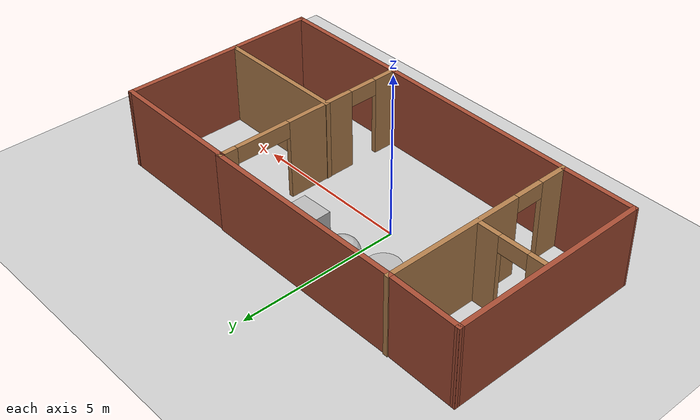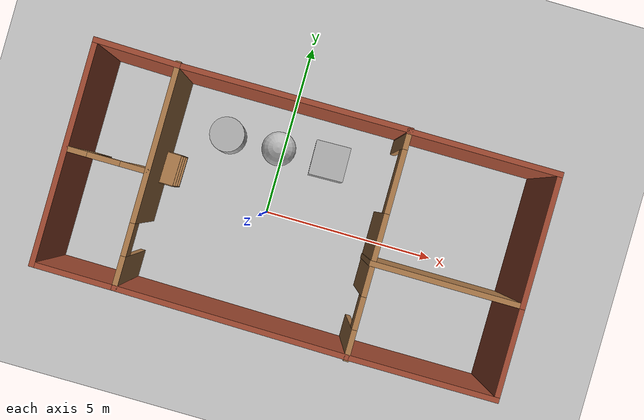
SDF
<sdf version="1.6">
 <world name="default">
  <light name="sun" type="directional">
   <pose>0 0 10 0 -0 0</pose>
   <diffuse>0.8 0.8 0.8 1</diffuse>
   <specular>0.2 0.2 0.2 1</specular>
   <attenuation>
    <range>1000</range>
    <constant>0.9</constant>
    <linear>0.01</linear>
    <quadratic>0.001</quadratic>
   </attenuation>
   <direction>-0.5 0.1 -0.9</direction>
  </light>
  <model name="ground_plane">
   <static>1</static>
   <link name="link">
    <collision name="collision">
     <geometry><plane><normal>0 0 1</normal><size>100 100</size></plane></geometry>
     <surface><friction><ode><mu>100</mu><mu2>50</mu2></ode></friction></surface>
    </collision>
    <visual name="visual">
     <cast_shadows>0</cast_shadows>
     <geometry><plane><normal>0 0 1</normal><size>100 100</size></plane></geometry>
     <material>
      <script><uri>file://media/materials/scripts/gazebo.material</uri><name>Gazebo/Grey</name></script>
     </material>
    </visual>
   </link>
  </model>
  <gravity>0 0 -9.8</gravity>
  <magnetic_field>6e-06 2.3e-05 -4.2e-05</magnetic_field>
  <atmosphere type="adiabatic"/>
  <physics name="default_physics" default="0" type="ode">
   <max_step_size>0.001</max_step_size>
   <real_time_factor>1</real_time_factor>
   <real_time_update_rate>1000</real_time_update_rate>
  </physics>
  <scene><ambient>0.4 0.4 0.4 1</ambient><background>0.7 0.7 0.7 1</background><shadows>1</shadows></scene>
  <audio><device>default</device></audio>
  <spherical_coordinates>
   <surface_model>EARTH_WGS84</surface_model>
   <latitude_deg>0</latitude_deg>
   <longitude_deg>0</longitude_deg>
   <elevation>0</elevation>
   <heading_deg>0</heading_deg>
  </spherical_coordinates>
  <model name="flat">
   <pose>0.879143 0.065747 0 0 -0 0</pose>
   <link name="Wall_10">
    <collision name="Wall_10_Collision">
     <geometry><box><size>6.47567 0.15 2.5</size></box></geometry>
     <pose>0 0 1.25 0 -0 0</pose>
    </collision>
    <visual name="Wall_10_Visual">
     <pose>0 0 1.25 0 -0 0</pose>
     <geometry><box><size>6.47567 0.15 2.5</size></box></geometry>
     <material>
      <script><uri>file://media/materials/scripts/gazebo.material</uri><name>Gazebo/Bricks</name></script>
      <ambient>1 1 1 1</ambient>
     </material>
     <meta><layer>0</layer></meta>
    </visual>
    <pose>-0.927592 -3.04296 0 0 -0 3.13003</pose>
   </link>
   <link name="Wall_12">
    <collision name="Wall_12_Collision">
     <geometry><box><size>4.25 0.15 2.5</size></box></geometry>
     <pose>0 0 1.25 0 -0 0</pose>
    </collision>
    <visual name="Wall_12_Visual">
     <pose>0 0 1.25 0 -0 0</pose>
     <geometry><box><size>4.25 0.15 2.5</size></box></geometry>
     <material>
      <script><uri>file://media/materials/scripts/gazebo.material</uri><name>Gazebo/Bricks</name></script>
      <ambient>1 1 1 1</ambient>
     </material>
     <meta><layer>0</layer></meta>
    </visual>
    <pose>4.28503 3.0632 0 0 -0 0</pose>
   </link>
   <link name="Wall_13">
    <collision name="Wall_13_Collision">
     <geometry><box><size>3.75 0.15 2.5</size></box></geometry>
     <pose>0 0 1.25 0 -0 0</pose>
    </collision>
    <visual name="Wall_13_Visual">
     <pose>0 0 1.25 0 -0 0</pose>
     <geometry><box><size>3.75 0.15 2.5</size></box></geometry>
     <material>
      <script><uri>file://media/materials/scripts/gazebo.material</uri><name>Gazebo/Bricks</name></script>
      <ambient>1 1 1 1</ambient>
     </material>
     <meta><layer>0</layer></meta>
    </visual>
    <pose>6.33503 1.2632 0 0 -0 -1.5708</pose>
   </link>
   <link name="Wall_14">
    <collision name="Wall_14_Collision">
     <geometry><box><size>4.25 0.15 2.5</size></box></geometry>
     <pose>0 0 1.25 0 -0 0</pose>
    </collision>
    <visual name="Wall_14_Visual">
     <pose>0 0 1.25 0 -0 0</pose>
     <geometry><box><size>4.25 0.15 2.5</size></box></geometry>
     <material>
      <script><uri>file://media/materials/scripts/gazebo.material</uri><name>Gazebo/Wood</name></script>
      <ambient>1 1 1 1</ambient>
     </material>
     <meta><layer>0</layer></meta>
    </visual>
    <pose>4.28503 -0.536801 0 0 -0 3.14159</pose>
   </link>
   <link name="Wall_16">
    <collision name="Wall_16_Collision">
     <geometry><box><size>4.25 0.15 2.5</size></box></geometry>
     <pose>0 0 1.25 0 -0 0</pose>
    </collision>
    <visual name="Wall_16_Visual">
     <pose>0 0 1.25 0 -0 0</pose>
     <geometry><box><size>4.25 0.15 2.5</size></box></geometry>
     <material>
      <script><uri>file://media/materials/scripts/gazebo.material</uri><name>Gazebo/Bricks</name></script>
      <ambient>1 1 1 1</ambient>
     </material>
     <meta><layer>0</layer></meta>
    </visual>
    <pose>4.28503 -3.07954 0 0 -0 0</pose>
   </link>
   <link name="Wall_17">
    <collision name="Wall_17_Collision">
     <geometry><box><size>2.69274 0.15 2.5</size></box></geometry>
     <pose>0 0 1.25 0 -0 0</pose>
    </collision>
    <visual name="Wall_17_Visual">
     <pose>0 0 1.25 0 -0 0</pose>
     <geometry><box><size>2.69274 0.15 2.5</size></box></geometry>
     <material>
      <script><uri>file://media/materials/scripts/gazebo.material</uri><name>Gazebo/Bricks</name></script>
      <ambient>1 1 1 1</ambient>
     </material>
     <meta><layer>0</layer></meta>
    </visual>
    <pose>6.33503 -1.80817 0 0 -0 1.5708</pose>
   </link>
   <link name="Wall_19">
    <collision name="Wall_19_Collision">
     <geometry><box><size>2.39354 0.15 2.5</size></box></geometry>
     <pose>0 0 1.25 0 -0 0</pose>
    </collision>
    <visual name="Wall_19_Visual">
     <pose>0 0 1.25 0 -0 0</pose>
     <geometry><box><size>2.39354 0.15 2.5</size></box></geometry>
     <material>
      <script><uri>file://media/materials/scripts/gazebo.material</uri><name>Gazebo/Bricks</name></script>
      <ambient>1 1 1 1</ambient>
     </material>
     <meta><layer>0</layer></meta>
    </visual>
    <pose>-5.21199 3.08601 0 0 -0 3.12126</pose>
   </link>
   <link name="Wall_20">
    <collision name="Wall_20_Collision">
     <geometry><box><size>6.25 0.15 2.5</size></box></geometry>
     <pose>0 0 1.25 0 -0 0</pose>
    </collision>
    <visual name="Wall_20_Visual">
     <pose>0 0 1.25 0 -0 0</pose>
     <geometry><box><size>6.25 0.15 2.5</size></box></geometry>
     <material>
      <script><uri>file://media/materials/scripts/gazebo.material</uri><name>Gazebo/Bricks</name></script>
      <ambient>1 1 1 1</ambient>
     </material>
     <meta><layer>0</layer></meta>
    </visual>
    <pose>-6.33376 0.058826 0 0 -0 -1.5708</pose>
   </link>
   <link name="Wall_21">
    <collision name="Wall_21_Collision">
     <geometry><box><size>2.39359 0.15 2.5</size></box></geometry>
     <pose>0 0 1.25 0 -0 0</pose>
    </collision>
    <visual name="Wall_21_Visual">
     <pose>0 0 1.25 0 -0 0</pose>
     <geometry><box><size>2.39359 0.15 2.5</size></box></geometry>
     <material>
      <script><uri>file://media/materials/scripts/gazebo.material</uri><name>Gazebo/Bricks</name></script>
      <ambient>1 1 1 1</ambient>
     </material>
     <meta><layer>0</layer></meta>
    </visual>
    <pose>-5.21199 -2.99878 0 0 -0 -0.006779</pose>
   </link>
   <link name="Wall_23">
    <pose>-5.16676 0.166321 0 0 -0 3.14159</pose>
    <visual name="Wall_23_Visual_0">
     <pose>-0.726963 0 1.25 0 -0 0</pose>
     <geometry><box><size>0.796074 0.15 2.5</size></box></geometry>
     <material>
      <script><uri>file://media/materials/scripts/gazebo.material</uri><name>Gazebo/Wood</name></script>
      <ambient>1 1 1 1</ambient>
     </material>
     <meta><layer>0</layer></meta>
    </visual>
    <collision name="Wall_23_Collision_0">
     <geometry><box><size>0.796074 0.15 2.5</size></box></geometry>
     <pose>-0.726963 0 1.25 0 -0 0</pose>
    </collision>
    <visual name="Wall_23_Visual_1">
     <pose>0.848037 0 1.25 0 -0 0</pose>
     <geometry><box><size>0.553926 0.15 2.5</size></box></geometry>
     <material>
      <script><uri>file://media/materials/scripts/gazebo.material</uri><name>Gazebo/Wood</name></script>
      <ambient>1 1 1 1</ambient>
     </material>
     <meta><layer>0</layer></meta>
    </visual>
    <collision name="Wall_23_Collision_1">
     <geometry><box><size>0.553926 0.15 2.5</size></box></geometry>
     <pose>0.848037 0 1.25 0 -0 0</pose>
    </collision>
    <visual name="Wall_23_Visual_2">
     <pose>0.121074 0 2.25 0 -0 0</pose>
     <geometry><box><size>0.9 0.15 0.5</size></box></geometry>
     <material>
      <script><uri>file://media/materials/scripts/gazebo.material</uri><name>Gazebo/Wood</name></script>
      <ambient>1 1 1 1</ambient>
     </material>
     <meta><layer>0</layer></meta>
    </visual>
    <collision name="Wall_23_Collision_2">
     <geometry><box><size>0.9 0.15 0.5</size></box></geometry>
     <pose>0.121074 0 2.25 0 -0 0</pose>
    </collision>
   </link>
   <link name="Wall_6">
    <pose>-4.09022 0.043617 0 0 -0 1.5708</pose>
    <visual name="Wall_6_Visual_0">
     <pose>-2.65388 0 1.25 0 -0 0</pose>
     <geometry><box><size>0.942236 0.15 2.5</size></box></geometry>
     <material>
      <script><uri>file://media/materials/scripts/gazebo.material</uri><name>Gazebo/Wood</name></script>
      <ambient>1 1 1 1</ambient>
     </material>
     <meta><layer>0</layer></meta>
    </visual>
    <collision name="Wall_6_Collision_0">
     <geometry><box><size>0.942236 0.15 2.5</size></box></geometry>
     <pose>-2.65388 0 1.25 0 -0 0</pose>
    </collision>
    <visual name="Wall_6_Visual_1">
     <pose>0.921118 0 1.25 0 -0 0</pose>
     <geometry><box><size>4.40776 0.15 2.5</size></box></geometry>
     <material>
      <script><uri>file://media/materials/scripts/gazebo.material</uri><name>Gazebo/Wood</name></script>
      <ambient>1 1 1 1</ambient>
     </material>
     <meta><layer>0</layer></meta>
    </visual>
    <collision name="Wall_6_Collision_1">
     <geometry><box><size>4.40776 0.15 2.5</size></box></geometry>
     <pose>0.921118 0 1.25 0 -0 0</pose>
    </collision>
    <visual name="Wall_6_Visual_2">
     <pose>-1.73276 0 2.25 0 -0 0</pose>
     <geometry><box><size>0.9 0.15 0.5</size></box></geometry>
     <material>
      <script><uri>file://media/materials/scripts/gazebo.material</uri><name>Gazebo/Wood</name></script>
      <ambient>1 1 1 1</ambient>
     </material>
     <meta><layer>0</layer></meta>
    </visual>
    <collision name="Wall_6_Collision_2">
     <geometry><box><size>0.9 0.15 0.5</size></box></geometry>
     <pose>-1.73276 0 2.25 0 -0 0</pose>
    </collision>
   </link>
   <link name="Wall_8">
    <collision name="Wall_8_Collision">
     <geometry><box><size>6.49048 0.15 2.5</size></box></geometry>
     <pose>0 0 1.25 0 -0 0</pose>
    </collision>
    <visual name="Wall_8_Visual">
     <pose>0 0 1.25 0 -0 0</pose>
     <geometry><box><size>6.49048 0.15 2.5</size></box></geometry>
     <material>
      <script><uri>file://media/materials/scripts/gazebo.material</uri><name>Gazebo/Bricks</name></script>
      <ambient>1 1 1 1</ambient>
     </material>
     <meta><layer>0</layer></meta>
    </visual>
    <pose>-0.919988 3.07841 0 0 -0 0.004797</pose>
   </link>
   <link name="Wall_9">
    <pose>2.25024 -0.023381 0 0 -0 -1.56587</pose>
    <visual name="Wall_9_Visual_0">
     <pose>-2.87798 0 1.25 0 -0 0</pose>
     <geometry><box><size>0.56727 0.15 2.5</size></box></geometry>
     <material>
      <script><uri>file://media/materials/scripts/gazebo.material</uri><name>Gazebo/Wood</name></script>
      <ambient>1 1 1 1</ambient>
     </material>
     <meta><layer>0</layer></meta>
    </visual>
    <collision name="Wall_9_Collision_0">
     <geometry><box><size>0.56727 0.15 2.5</size></box></geometry>
     <pose>-2.87798 0 1.25 0 -0 0</pose>
    </collision>
    <visual name="Wall_9_Visual_1">
     <pose>0.285145 0 1.25 0 -0 0</pose>
     <geometry><box><size>2.25608 0.15 2.5</size></box></geometry>
     <material>
      <script><uri>file://media/materials/scripts/gazebo.material</uri><name>Gazebo/Wood</name></script>
      <ambient>1 1 1 1</ambient>
     </material>
     <meta><layer>0</layer></meta>
    </visual>
    <collision name="Wall_9_Collision_1">
     <geometry><box><size>2.25608 0.15 2.5</size></box></geometry>
     <pose>0.285145 0 1.25 0 -0 0</pose>
    </collision>
    <visual name="Wall_9_Visual_2">
     <pose>2.7374 0 1.25 0 -0 0</pose>
     <geometry><box><size>0.848434 0.15 2.5</size></box></geometry>
     <material>
      <script><uri>file://media/materials/scripts/gazebo.material</uri><name>Gazebo/Wood</name></script>
      <ambient>1 1 1 1</ambient>
     </material>
     <meta><layer>0</layer></meta>
    </visual>
    <collision name="Wall_9_Collision_2">
     <geometry><box><size>0.848434 0.15 2.5</size></box></geometry>
     <pose>2.7374 0 1.25 0 -0 0</pose>
    </collision>
    <visual name="Wall_9_Visual_3">
     <pose>-1.71862 0 2.25 0 -0 0</pose>
     <geometry><box><size>1.75145 0.15 0.5</size></box></geometry>
     <material>
      <script><uri>file://media/materials/scripts/gazebo.material</uri><name>Gazebo/Wood</name></script>
      <ambient>1 1 1 1</ambient>
     </material>
     <meta><layer>0</layer></meta>
    </visual>
    <collision name="Wall_9_Collision_3">
     <geometry><box><size>1.75145 0.15 0.5</size></box></geometry>
     <pose>-1.71862 0 2.25 0 -0 0</pose>
    </collision>
    <visual name="Wall_9_Visual_4">
     <pose>1.86318 0 2.25 0 -0 0</pose>
     <geometry><box><size>0.9 0.15 0.5</size></box></geometry>
     <material>
      <script><uri>file://media/materials/scripts/gazebo.material</uri><name>Gazebo/Wood</name></script>
      <ambient>1 1 1 1</ambient>
     </material>
     <meta><layer>0</layer></meta>
    </visual>
    <collision name="Wall_9_Collision_4">
     <geometry><box><size>0.9 0.15 0.5</size></box></geometry>
     <pose>1.86318 0 2.25 0 -0 0</pose>
    </collision>
   </link>
   <static>1</static>
  </model>
  <model name="textured_shapes">
   <pose>-0.146443 1.86647 0.5 0 -0 1.5946</pose>
   <link name="box">
    <pose>0 -1.5 0 0 -0 0</pose>
    <collision name="collision"><geometry><box><size>1 1 1</size></box></geometry></collision>
    <visual name="visual">
     <geometry><box><size>1 1 1</size></box></geometry>
     <material>
      <script>
       <uri>model://textured_shapes/materials/scripts</uri>
       <uri>model://textured_shapes/materials/textures</uri>
       <name>TexturedShape/Squares</name>
      </script>
     </material>
    </visual>
    <inertial>
     <inertia><ixx>1</ixx><ixy>0</ixy><ixz>0</ixz><iyy>1</iyy><iyz>0</iyz><izz>1</izz></inertia>
     <mass>1</mass>
    </inertial>
   </link>
   <link name="sphere">
    <collision name="collision"><geometry><sphere><radius>0.5</radius></sphere></geometry></collision>
    <visual name="visual">
     <geometry><sphere><radius>0.5</radius></sphere></geometry>
     <material>
      <script>
       <uri>model://textured_shapes/materials/scripts</uri>
       <uri>model://textured_shapes/materials/textures</uri>
       <name>TexturedShape/Squares</name>
      </script>
     </material>
    </visual>
    <inertial>
     <inertia><ixx>1</ixx><ixy>0</ixy><ixz>0</ixz><iyy>1</iyy><iyz>0</iyz><izz>1</izz></inertia>
     <mass>1</mass>
    </inertial>
   </link>
   <link name="cylinder">
    <pose>0 1.5 0 0 -0 0</pose>
    <collision name="collision">
     <geometry><cylinder><radius>0.5</radius><length>1</length></cylinder></geometry>
    </collision>
    <visual name="visual">
     <geometry><cylinder><radius>0.5</radius><length>1</length></cylinder></geometry>
     <material>
      <script>
       <uri>model://textured_shapes/materials/scripts</uri>
       <uri>model://textured_shapes/materials/textures</uri>
       <name>TexturedShape/Squares</name>
      </script>
     </material>
    </visual>
    <inertial>
     <inertia><ixx>1</ixx><ixy>0</ixy><ixz>0</ixz><iyy>1</iyy><iyz>0</iyz><izz>1</izz></inertia>
     <mass>1</mass>
    </inertial>
   </link>
  </model>
  <model name="bookshelf">
   <static>1</static>
   <link name="link">
    <inertial><mass>1</mass></inertial>
    <collision name="back">
     <pose>0 0.005 0.6 0 -0 0</pose>
     <geometry><box><size>0.9 0.01 1.2</size></box></geometry>
    </collision>
    <visual name="visual1">
     <pose>0 0.005 0.6 0 -0 0</pose>
     <geometry><box><size>0.9 0.01 1.2</size></box></geometry>
     <material>
      <script><uri>file://media/materials/scripts/gazebo.material</uri><name>Gazebo/Wood</name></script>
     </material>
    </visual>
    <collision name="left_side">
     <pose>0.45 -0.195 0.6 0 -0 0</pose>
     <geometry><box><size>0.02 0.4 1.2</size></box></geometry>
    </collision>
    <visual name="visual2">
     <pose>0.45 -0.195 0.6 0 -0 0</pose>
     <geometry><box><size>0.02 0.4 1.2</size></box></geometry>
     <material>
      <script><uri>file://media/materials/scripts/gazebo.material</uri><name>Gazebo/Wood</name></script>
     </material>
    </visual>
    <collision name="right_side">
     <pose>-0.45 -0.195 0.6 0 -0 0</pose>
     <geometry><box><size>0.02 0.4 1.2</size></box></geometry>
    </collision>
    <visual name="visual3">
     <pose>-0.45 -0.195 0.6 0 -0 0</pose>
     <geometry><box><size>0.02 0.4 1.2</size></box></geometry>
     <material>
      <script><uri>file://media/materials/scripts/gazebo.material</uri><name>Gazebo/Wood</name></script>
     </material>
    </visual>
    <collision name="bottom">
     <pose>0 -0.195 0.03 0 -0 0</pose>
     <geometry><box><size>0.88 0.4 0.06</size></box></geometry>
    </collision>
    <visual name="visual4">
     <pose>0 -0.195 0.03 0 -0 0</pose>
     <geometry><box><size>0.88 0.4 0.06</size></box></geometry>
     <material>
      <script><uri>file://media/materials/scripts/gazebo.material</uri><name>Gazebo/Wood</name></script>
     </material>
    </visual>
    <collision name="top">
     <pose>0 -0.195 1.19 0 -0 0</pose>
     <geometry><box><size>0.88 0.4 0.02</size></box></geometry>
    </collision>
    <visual name="visual5">
     <pose>0 -0.195 1.19 0 -0 0</pose>
     <geometry><box><size>0.88 0.4 0.02</size></box></geometry>
     <material>
      <script><uri>file://media/materials/scripts/gazebo.material</uri><name>Gazebo/Wood</name></script>
     </material>
    </visual>
    <collision name="low_shelf">
     <pose>0 -0.195 0.43 0 -0 0</pose>
     <geometry><box><size>0.88 0.4 0.02</size></box></geometry>
    </collision>
    <visual name="visual6">
     <pose>0 -0.195 0.43 0 -0 0</pose>
     <geometry><box><size>0.88 0.4 0.02</size></box></geometry>
     <material>
      <script><uri>file://media/materials/scripts/gazebo.material</uri><name>Gazebo/Wood</name></script>
     </material>
    </visual>
    <collision name="high_shelf">
     <pose>0 -0.195 0.8 0 -0 0</pose>
     <geometry><box><size>0.88 0.4 0.02</size></box></geometry>
    </collision>
    <visual name="visual7">
     <pose>0 -0.195 0.8 0 -0 0</pose>
     <geometry><box><size>0.88 0.4 0.02</size></box></geometry>
     <material>
      <script><uri>file://media/materials/scripts/gazebo.material</uri><name>Gazebo/Wood</name></script>
     </material>
    </visual>
   </link>
   <pose>-3.07852 0.456083 0 0 -0 1.55665</pose>
  </model>
 </world>
</sdf>
